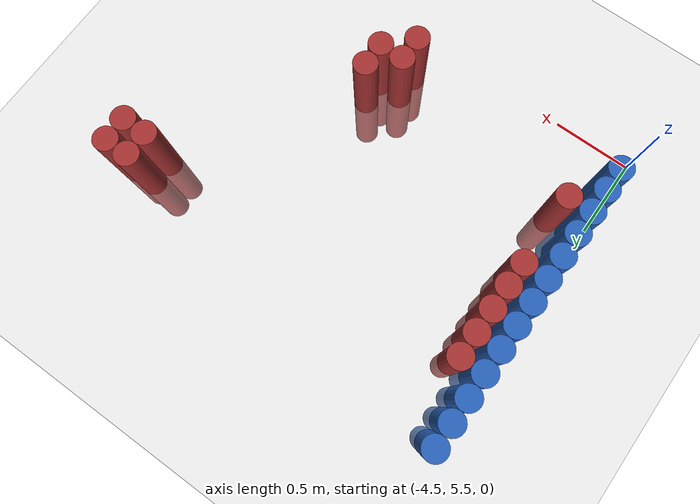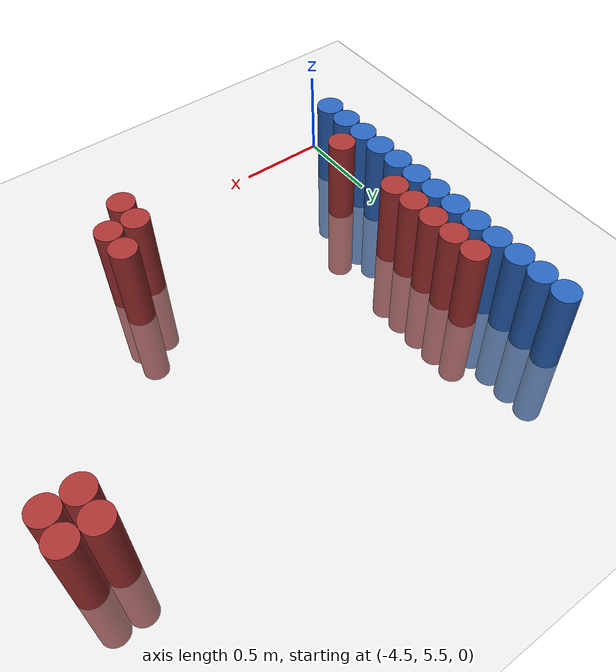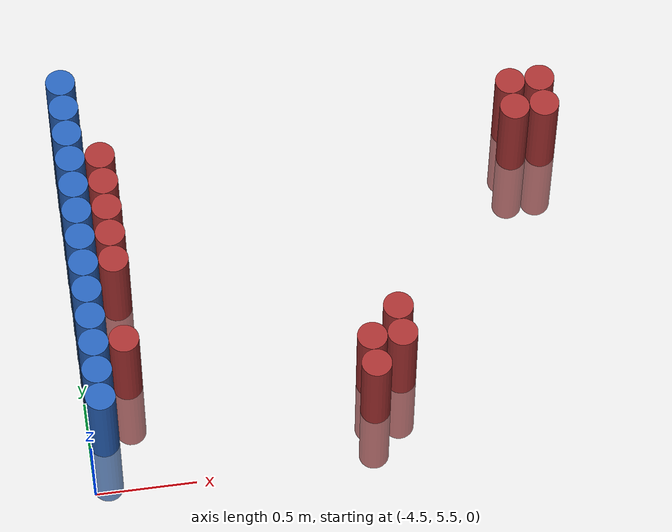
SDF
<sdf version="1.6">
 <world name="world_177">
  <model name="ground_plane">
   <static>1</static>
   <link name="link">
    <collision name="collision">
     <geometry><plane><normal>0 0 1</normal><size>100 100</size></plane></geometry>
     <surface><friction><ode><mu>100</mu><mu2>50</mu2></ode></friction></surface>
    </collision>
    <visual name="visual">
     <cast_shadows>0</cast_shadows>
     <geometry><plane><normal>0 0 1</normal><size>100 100</size></plane></geometry>
     <material>
      <script><uri>file://media/materials/scripts/gazebo.material</uri><name>Gazebo/Grey</name></script>
     </material>
    </visual>
   </link>
  </model>
  <model name="unit_cylinder_100">
   <static>1</static>
   <pose>-4.425000 5.775000 0.000000 0.000000 0.000000 0.000000</pose>
   <link name="link">
    <inertial>
     <mass>1</mass>
     <inertia><ixx>0.145833</ixx><ixy>0</ixy><ixz>0</ixz><iyy>0.145833</iyy><iyz>0</iyz><izz>0.125</izz></inertia>
    </inertial>
    <collision name="collision">
     <geometry><cylinder><radius>0.075000</radius><length>1</length></cylinder></geometry>
    </collision>
    <visual name="visual">
     <geometry><cylinder><radius>0.075000</radius><length>1</length></cylinder></geometry>
     <material>
      <ambient>0.152000 0.379000 0.720000 1</ambient>
      <diffuse>0.152000 0.379000 0.720000 1</diffuse>
     </material>
     <material>
      <script><name>Gazebo/Grey</name><uri>file://media/materials/scripts/gazebo.material</uri></script>
     </material>
    </visual>
   </link>
  </model>
  <model name="unit_cylinder_101">
   <static>1</static>
   <pose>-4.425000 5.925000 0.000000 0.000000 0.000000 0.000000</pose>
   <link name="link">
    <inertial>
     <mass>1</mass>
     <inertia><ixx>0.145833</ixx><ixy>0</ixy><ixz>0</ixz><iyy>0.145833</iyy><iyz>0</iyz><izz>0.125</izz></inertia>
    </inertial>
    <collision name="collision">
     <geometry><cylinder><radius>0.075000</radius><length>1</length></cylinder></geometry>
    </collision>
    <visual name="visual">
     <geometry><cylinder><radius>0.075000</radius><length>1</length></cylinder></geometry>
     <material>
      <ambient>0.152000 0.379000 0.720000 1</ambient>
      <diffuse>0.152000 0.379000 0.720000 1</diffuse>
     </material>
     <material>
      <script><name>Gazebo/Grey</name><uri>file://media/materials/scripts/gazebo.material</uri></script>
     </material>
    </visual>
   </link>
  </model>
  <model name="unit_cylinder_102">
   <static>1</static>
   <pose>-4.425000 6.075000 0.000000 0.000000 0.000000 0.000000</pose>
   <link name="link">
    <inertial>
     <mass>1</mass>
     <inertia><ixx>0.145833</ixx><ixy>0</ixy><ixz>0</ixz><iyy>0.145833</iyy><iyz>0</iyz><izz>0.125</izz></inertia>
    </inertial>
    <collision name="collision">
     <geometry><cylinder><radius>0.075000</radius><length>1</length></cylinder></geometry>
    </collision>
    <visual name="visual">
     <geometry><cylinder><radius>0.075000</radius><length>1</length></cylinder></geometry>
     <material>
      <ambient>0.152000 0.379000 0.720000 1</ambient>
      <diffuse>0.152000 0.379000 0.720000 1</diffuse>
     </material>
     <material>
      <script><name>Gazebo/Grey</name><uri>file://media/materials/scripts/gazebo.material</uri></script>
     </material>
    </visual>
   </link>
  </model>
  <model name="unit_cylinder_103">
   <static>1</static>
   <pose>-4.425000 6.225000 0.000000 0.000000 0.000000 0.000000</pose>
   <link name="link">
    <inertial>
     <mass>1</mass>
     <inertia><ixx>0.145833</ixx><ixy>0</ixy><ixz>0</ixz><iyy>0.145833</iyy><iyz>0</iyz><izz>0.125</izz></inertia>
    </inertial>
    <collision name="collision">
     <geometry><cylinder><radius>0.075000</radius><length>1</length></cylinder></geometry>
    </collision>
    <visual name="visual">
     <geometry><cylinder><radius>0.075000</radius><length>1</length></cylinder></geometry>
     <material>
      <ambient>0.152000 0.379000 0.720000 1</ambient>
      <diffuse>0.152000 0.379000 0.720000 1</diffuse>
     </material>
     <material>
      <script><name>Gazebo/Grey</name><uri>file://media/materials/scripts/gazebo.material</uri></script>
     </material>
    </visual>
   </link>
  </model>
  <model name="unit_cylinder_104">
   <static>1</static>
   <pose>-4.425000 6.375000 0.000000 0.000000 0.000000 0.000000</pose>
   <link name="link">
    <inertial>
     <mass>1</mass>
     <inertia><ixx>0.145833</ixx><ixy>0</ixy><ixz>0</ixz><iyy>0.145833</iyy><iyz>0</iyz><izz>0.125</izz></inertia>
    </inertial>
    <collision name="collision">
     <geometry><cylinder><radius>0.075000</radius><length>1</length></cylinder></geometry>
    </collision>
    <visual name="visual">
     <geometry><cylinder><radius>0.075000</radius><length>1</length></cylinder></geometry>
     <material>
      <ambient>0.152000 0.379000 0.720000 1</ambient>
      <diffuse>0.152000 0.379000 0.720000 1</diffuse>
     </material>
     <material>
      <script><name>Gazebo/Grey</name><uri>file://media/materials/scripts/gazebo.material</uri></script>
     </material>
    </visual>
   </link>
  </model>
  <model name="unit_cylinder_105">
   <static>1</static>
   <pose>-4.425000 6.525000 0.000000 0.000000 0.000000 0.000000</pose>
   <link name="link">
    <inertial>
     <mass>1</mass>
     <inertia><ixx>0.145833</ixx><ixy>0</ixy><ixz>0</ixz><iyy>0.145833</iyy><iyz>0</iyz><izz>0.125</izz></inertia>
    </inertial>
    <collision name="collision">
     <geometry><cylinder><radius>0.075000</radius><length>1</length></cylinder></geometry>
    </collision>
    <visual name="visual">
     <geometry><cylinder><radius>0.075000</radius><length>1</length></cylinder></geometry>
     <material>
      <ambient>0.152000 0.379000 0.720000 1</ambient>
      <diffuse>0.152000 0.379000 0.720000 1</diffuse>
     </material>
     <material>
      <script><name>Gazebo/Grey</name><uri>file://media/materials/scripts/gazebo.material</uri></script>
     </material>
    </visual>
   </link>
  </model>
  <model name="unit_cylinder_106">
   <static>1</static>
   <pose>-4.425000 6.675000 0.000000 0.000000 0.000000 0.000000</pose>
   <link name="link">
    <inertial>
     <mass>1</mass>
     <inertia><ixx>0.145833</ixx><ixy>0</ixy><ixz>0</ixz><iyy>0.145833</iyy><iyz>0</iyz><izz>0.125</izz></inertia>
    </inertial>
    <collision name="collision">
     <geometry><cylinder><radius>0.075000</radius><length>1</length></cylinder></geometry>
    </collision>
    <visual name="visual">
     <geometry><cylinder><radius>0.075000</radius><length>1</length></cylinder></geometry>
     <material>
      <ambient>0.152000 0.379000 0.720000 1</ambient>
      <diffuse>0.152000 0.379000 0.720000 1</diffuse>
     </material>
     <material>
      <script><name>Gazebo/Grey</name><uri>file://media/materials/scripts/gazebo.material</uri></script>
     </material>
    </visual>
   </link>
  </model>
  <model name="unit_cylinder_107">
   <static>1</static>
   <pose>-4.425000 6.825000 0.000000 0.000000 0.000000 0.000000</pose>
   <link name="link">
    <inertial>
     <mass>1</mass>
     <inertia><ixx>0.145833</ixx><ixy>0</ixy><ixz>0</ixz><iyy>0.145833</iyy><iyz>0</iyz><izz>0.125</izz></inertia>
    </inertial>
    <collision name="collision">
     <geometry><cylinder><radius>0.075000</radius><length>1</length></cylinder></geometry>
    </collision>
    <visual name="visual">
     <geometry><cylinder><radius>0.075000</radius><length>1</length></cylinder></geometry>
     <material>
      <ambient>0.152000 0.379000 0.720000 1</ambient>
      <diffuse>0.152000 0.379000 0.720000 1</diffuse>
     </material>
     <material>
      <script><name>Gazebo/Grey</name><uri>file://media/materials/scripts/gazebo.material</uri></script>
     </material>
    </visual>
   </link>
  </model>
  <model name="unit_cylinder_108">
   <static>1</static>
   <pose>-4.425000 6.975000 0.000000 0.000000 0.000000 0.000000</pose>
   <link name="link">
    <inertial>
     <mass>1</mass>
     <inertia><ixx>0.145833</ixx><ixy>0</ixy><ixz>0</ixz><iyy>0.145833</iyy><iyz>0</iyz><izz>0.125</izz></inertia>
    </inertial>
    <collision name="collision">
     <geometry><cylinder><radius>0.075000</radius><length>1</length></cylinder></geometry>
    </collision>
    <visual name="visual">
     <geometry><cylinder><radius>0.075000</radius><length>1</length></cylinder></geometry>
     <material>
      <ambient>0.152000 0.379000 0.720000 1</ambient>
      <diffuse>0.152000 0.379000 0.720000 1</diffuse>
     </material>
     <material>
      <script><name>Gazebo/Grey</name><uri>file://media/materials/scripts/gazebo.material</uri></script>
     </material>
    </visual>
   </link>
  </model>
  <model name="unit_cylinder_109">
   <static>1</static>
   <pose>-4.425000 7.125000 0.000000 0.000000 0.000000 0.000000</pose>
   <link name="link">
    <inertial>
     <mass>1</mass>
     <inertia><ixx>0.145833</ixx><ixy>0</ixy><ixz>0</ixz><iyy>0.145833</iyy><iyz>0</iyz><izz>0.125</izz></inertia>
    </inertial>
    <collision name="collision">
     <geometry><cylinder><radius>0.075000</radius><length>1</length></cylinder></geometry>
    </collision>
    <visual name="visual">
     <geometry><cylinder><radius>0.075000</radius><length>1</length></cylinder></geometry>
     <material>
      <ambient>0.152000 0.379000 0.720000 1</ambient>
      <diffuse>0.152000 0.379000 0.720000 1</diffuse>
     </material>
     <material>
      <script><name>Gazebo/Grey</name><uri>file://media/materials/scripts/gazebo.material</uri></script>
     </material>
    </visual>
   </link>
  </model>
  <model name="unit_cylinder_110">
   <static>1</static>
   <pose>-4.425000 7.275000 0.000000 0.000000 0.000000 0.000000</pose>
   <link name="link">
    <inertial>
     <mass>1</mass>
     <inertia><ixx>0.145833</ixx><ixy>0</ixy><ixz>0</ixz><iyy>0.145833</iyy><iyz>0</iyz><izz>0.125</izz></inertia>
    </inertial>
    <collision name="collision">
     <geometry><cylinder><radius>0.075000</radius><length>1</length></cylinder></geometry>
    </collision>
    <visual name="visual">
     <geometry><cylinder><radius>0.075000</radius><length>1</length></cylinder></geometry>
     <material>
      <ambient>0.152000 0.379000 0.720000 1</ambient>
      <diffuse>0.152000 0.379000 0.720000 1</diffuse>
     </material>
     <material>
      <script><name>Gazebo/Grey</name><uri>file://media/materials/scripts/gazebo.material</uri></script>
     </material>
    </visual>
   </link>
  </model>
  <model name="unit_cylinder_111">
   <static>1</static>
   <pose>-4.425000 7.425000 0.000000 0.000000 0.000000 0.000000</pose>
   <link name="link">
    <inertial>
     <mass>1</mass>
     <inertia><ixx>0.145833</ixx><ixy>0</ixy><ixz>0</ixz><iyy>0.145833</iyy><iyz>0</iyz><izz>0.125</izz></inertia>
    </inertial>
    <collision name="collision">
     <geometry><cylinder><radius>0.075000</radius><length>1</length></cylinder></geometry>
    </collision>
    <visual name="visual">
     <geometry><cylinder><radius>0.075000</radius><length>1</length></cylinder></geometry>
     <material>
      <ambient>0.152000 0.379000 0.720000 1</ambient>
      <diffuse>0.152000 0.379000 0.720000 1</diffuse>
     </material>
     <material>
      <script><name>Gazebo/Grey</name><uri>file://media/materials/scripts/gazebo.material</uri></script>
     </material>
    </visual>
   </link>
  </model>
  <model name="unit_cylinder_112">
   <static>1</static>
   <pose>-4.425000 7.575000 0.000000 0.000000 0.000000 0.000000</pose>
   <link name="link">
    <inertial>
     <mass>1</mass>
     <inertia><ixx>0.145833</ixx><ixy>0</ixy><ixz>0</ixz><iyy>0.145833</iyy><iyz>0</iyz><izz>0.125</izz></inertia>
    </inertial>
    <collision name="collision">
     <geometry><cylinder><radius>0.075000</radius><length>1</length></cylinder></geometry>
    </collision>
    <visual name="visual">
     <geometry><cylinder><radius>0.075000</radius><length>1</length></cylinder></geometry>
     <material>
      <ambient>0.152000 0.379000 0.720000 1</ambient>
      <diffuse>0.152000 0.379000 0.720000 1</diffuse>
     </material>
     <material>
      <script><name>Gazebo/Grey</name><uri>file://media/materials/scripts/gazebo.material</uri></script>
     </material>
    </visual>
   </link>
  </model>
  <model name="unit_cylinder_127">
   <static>1</static>
   <pose>-4.275000 6.075000 0.000000 0.000000 0.000000 0.000000</pose>
   <link name="link">
    <inertial>
     <mass>1</mass>
     <inertia><ixx>0.145833</ixx><ixy>0</ixy><ixz>0</ixz><iyy>0.145833</iyy><iyz>0</iyz><izz>0.125</izz></inertia>
    </inertial>
    <collision name="collision">
     <geometry><cylinder><radius>0.075000</radius><length>1</length></cylinder></geometry>
    </collision>
    <visual name="visual">
     <geometry><cylinder><radius>0.075000</radius><length>1</length></cylinder></geometry>
     <material>
      <ambient>0.648000 0.192000 0.192000 1</ambient>
      <diffuse>0.648000 0.192000 0.192000 1</diffuse>
     </material>
     <material>
      <script><name>Gazebo/Grey</name><uri>file://media/materials/scripts/gazebo.material</uri></script>
     </material>
    </visual>
   </link>
  </model>
  <model name="unit_cylinder_128">
   <static>1</static>
   <pose>-4.275000 6.525000 0.000000 0.000000 0.000000 0.000000</pose>
   <link name="link">
    <inertial>
     <mass>1</mass>
     <inertia><ixx>0.145833</ixx><ixy>0</ixy><ixz>0</ixz><iyy>0.145833</iyy><iyz>0</iyz><izz>0.125</izz></inertia>
    </inertial>
    <collision name="collision">
     <geometry><cylinder><radius>0.075000</radius><length>1</length></cylinder></geometry>
    </collision>
    <visual name="visual">
     <geometry><cylinder><radius>0.075000</radius><length>1</length></cylinder></geometry>
     <material>
      <ambient>0.648000 0.192000 0.192000 1</ambient>
      <diffuse>0.648000 0.192000 0.192000 1</diffuse>
     </material>
     <material>
      <script><name>Gazebo/Grey</name><uri>file://media/materials/scripts/gazebo.material</uri></script>
     </material>
    </visual>
   </link>
  </model>
  <model name="unit_cylinder_129">
   <static>1</static>
   <pose>-4.275000 6.675000 0.000000 0.000000 0.000000 0.000000</pose>
   <link name="link">
    <inertial>
     <mass>1</mass>
     <inertia><ixx>0.145833</ixx><ixy>0</ixy><ixz>0</ixz><iyy>0.145833</iyy><iyz>0</iyz><izz>0.125</izz></inertia>
    </inertial>
    <collision name="collision">
     <geometry><cylinder><radius>0.075000</radius><length>1</length></cylinder></geometry>
    </collision>
    <visual name="visual">
     <geometry><cylinder><radius>0.075000</radius><length>1</length></cylinder></geometry>
     <material>
      <ambient>0.648000 0.192000 0.192000 1</ambient>
      <diffuse>0.648000 0.192000 0.192000 1</diffuse>
     </material>
     <material>
      <script><name>Gazebo/Grey</name><uri>file://media/materials/scripts/gazebo.material</uri></script>
     </material>
    </visual>
   </link>
  </model>
  <model name="unit_cylinder_130">
   <static>1</static>
   <pose>-4.275000 6.825000 0.000000 0.000000 0.000000 0.000000</pose>
   <link name="link">
    <inertial>
     <mass>1</mass>
     <inertia><ixx>0.145833</ixx><ixy>0</ixy><ixz>0</ixz><iyy>0.145833</iyy><iyz>0</iyz><izz>0.125</izz></inertia>
    </inertial>
    <collision name="collision">
     <geometry><cylinder><radius>0.075000</radius><length>1</length></cylinder></geometry>
    </collision>
    <visual name="visual">
     <geometry><cylinder><radius>0.075000</radius><length>1</length></cylinder></geometry>
     <material>
      <ambient>0.648000 0.192000 0.192000 1</ambient>
      <diffuse>0.648000 0.192000 0.192000 1</diffuse>
     </material>
     <material>
      <script><name>Gazebo/Grey</name><uri>file://media/materials/scripts/gazebo.material</uri></script>
     </material>
    </visual>
   </link>
  </model>
  <model name="unit_cylinder_131">
   <static>1</static>
   <pose>-4.275000 6.975000 0.000000 0.000000 0.000000 0.000000</pose>
   <link name="link">
    <inertial>
     <mass>1</mass>
     <inertia><ixx>0.145833</ixx><ixy>0</ixy><ixz>0</ixz><iyy>0.145833</iyy><iyz>0</iyz><izz>0.125</izz></inertia>
    </inertial>
    <collision name="collision">
     <geometry><cylinder><radius>0.075000</radius><length>1</length></cylinder></geometry>
    </collision>
    <visual name="visual">
     <geometry><cylinder><radius>0.075000</radius><length>1</length></cylinder></geometry>
     <material>
      <ambient>0.648000 0.192000 0.192000 1</ambient>
      <diffuse>0.648000 0.192000 0.192000 1</diffuse>
     </material>
     <material>
      <script><name>Gazebo/Grey</name><uri>file://media/materials/scripts/gazebo.material</uri></script>
     </material>
    </visual>
   </link>
  </model>
  <model name="unit_cylinder_132">
   <static>1</static>
   <pose>-4.275000 7.125000 0.000000 0.000000 0.000000 0.000000</pose>
   <link name="link">
    <inertial>
     <mass>1</mass>
     <inertia><ixx>0.145833</ixx><ixy>0</ixy><ixz>0</ixz><iyy>0.145833</iyy><iyz>0</iyz><izz>0.125</izz></inertia>
    </inertial>
    <collision name="collision">
     <geometry><cylinder><radius>0.075000</radius><length>1</length></cylinder></geometry>
    </collision>
    <visual name="visual">
     <geometry><cylinder><radius>0.075000</radius><length>1</length></cylinder></geometry>
     <material>
      <ambient>0.648000 0.192000 0.192000 1</ambient>
      <diffuse>0.648000 0.192000 0.192000 1</diffuse>
     </material>
     <material>
      <script><name>Gazebo/Grey</name><uri>file://media/materials/scripts/gazebo.material</uri></script>
     </material>
    </visual>
   </link>
  </model>
  <model name="unit_cylinder_141">
   <static>1</static>
   <pose>-3.075000 5.775000 0.000000 0.000000 0.000000 0.000000</pose>
   <link name="link">
    <inertial>
     <mass>1</mass>
     <inertia><ixx>0.145833</ixx><ixy>0</ixy><ixz>0</ixz><iyy>0.145833</iyy><iyz>0</iyz><izz>0.125</izz></inertia>
    </inertial>
    <collision name="collision">
     <geometry><cylinder><radius>0.075000</radius><length>1</length></cylinder></geometry>
    </collision>
    <visual name="visual">
     <geometry><cylinder><radius>0.075000</radius><length>1</length></cylinder></geometry>
     <material>
      <ambient>0.648000 0.192000 0.192000 1</ambient>
      <diffuse>0.648000 0.192000 0.192000 1</diffuse>
     </material>
     <material>
      <script><name>Gazebo/Grey</name><uri>file://media/materials/scripts/gazebo.material</uri></script>
     </material>
    </visual>
   </link>
  </model>
  <model name="unit_cylinder_142">
   <static>1</static>
   <pose>-3.075000 5.925000 0.000000 0.000000 0.000000 0.000000</pose>
   <link name="link">
    <inertial>
     <mass>1</mass>
     <inertia><ixx>0.145833</ixx><ixy>0</ixy><ixz>0</ixz><iyy>0.145833</iyy><iyz>0</iyz><izz>0.125</izz></inertia>
    </inertial>
    <collision name="collision">
     <geometry><cylinder><radius>0.075000</radius><length>1</length></cylinder></geometry>
    </collision>
    <visual name="visual">
     <geometry><cylinder><radius>0.075000</radius><length>1</length></cylinder></geometry>
     <material>
      <ambient>0.648000 0.192000 0.192000 1</ambient>
      <diffuse>0.648000 0.192000 0.192000 1</diffuse>
     </material>
     <material>
      <script><name>Gazebo/Grey</name><uri>file://media/materials/scripts/gazebo.material</uri></script>
     </material>
    </visual>
   </link>
  </model>
  <model name="unit_cylinder_143">
   <static>1</static>
   <pose>-2.925000 5.925000 0.000000 0.000000 0.000000 0.000000</pose>
   <link name="link">
    <inertial>
     <mass>1</mass>
     <inertia><ixx>0.145833</ixx><ixy>0</ixy><ixz>0</ixz><iyy>0.145833</iyy><iyz>0</iyz><izz>0.125</izz></inertia>
    </inertial>
    <collision name="collision">
     <geometry><cylinder><radius>0.075000</radius><length>1</length></cylinder></geometry>
    </collision>
    <visual name="visual">
     <geometry><cylinder><radius>0.075000</radius><length>1</length></cylinder></geometry>
     <material>
      <ambient>0.648000 0.192000 0.192000 1</ambient>
      <diffuse>0.648000 0.192000 0.192000 1</diffuse>
     </material>
     <material>
      <script><name>Gazebo/Grey</name><uri>file://media/materials/scripts/gazebo.material</uri></script>
     </material>
    </visual>
   </link>
  </model>
  <model name="unit_cylinder_144">
   <static>1</static>
   <pose>-2.925000 6.075000 0.000000 0.000000 0.000000 0.000000</pose>
   <link name="link">
    <inertial>
     <mass>1</mass>
     <inertia><ixx>0.145833</ixx><ixy>0</ixy><ixz>0</ixz><iyy>0.145833</iyy><iyz>0</iyz><izz>0.125</izz></inertia>
    </inertial>
    <collision name="collision">
     <geometry><cylinder><radius>0.075000</radius><length>1</length></cylinder></geometry>
    </collision>
    <visual name="visual">
     <geometry><cylinder><radius>0.075000</radius><length>1</length></cylinder></geometry>
     <material>
      <ambient>0.648000 0.192000 0.192000 1</ambient>
      <diffuse>0.648000 0.192000 0.192000 1</diffuse>
     </material>
     <material>
      <script><name>Gazebo/Grey</name><uri>file://media/materials/scripts/gazebo.material</uri></script>
     </material>
    </visual>
   </link>
  </model>
  <model name="unit_cylinder_152">
   <static>1</static>
   <pose>-2.175000 7.125000 0.000000 0.000000 0.000000 0.000000</pose>
   <link name="link">
    <inertial>
     <mass>1</mass>
     <inertia><ixx>0.145833</ixx><ixy>0</ixy><ixz>0</ixz><iyy>0.145833</iyy><iyz>0</iyz><izz>0.125</izz></inertia>
    </inertial>
    <collision name="collision">
     <geometry><cylinder><radius>0.075000</radius><length>1</length></cylinder></geometry>
    </collision>
    <visual name="visual">
     <geometry><cylinder><radius>0.075000</radius><length>1</length></cylinder></geometry>
     <material>
      <ambient>0.648000 0.192000 0.192000 1</ambient>
      <diffuse>0.648000 0.192000 0.192000 1</diffuse>
     </material>
     <material>
      <script><name>Gazebo/Grey</name><uri>file://media/materials/scripts/gazebo.material</uri></script>
     </material>
    </visual>
   </link>
  </model>
  <model name="unit_cylinder_153">
   <static>1</static>
   <pose>-2.175000 7.275000 0.000000 0.000000 0.000000 0.000000</pose>
   <link name="link">
    <inertial>
     <mass>1</mass>
     <inertia><ixx>0.145833</ixx><ixy>0</ixy><ixz>0</ixz><iyy>0.145833</iyy><iyz>0</iyz><izz>0.125</izz></inertia>
    </inertial>
    <collision name="collision">
     <geometry><cylinder><radius>0.075000</radius><length>1</length></cylinder></geometry>
    </collision>
    <visual name="visual">
     <geometry><cylinder><radius>0.075000</radius><length>1</length></cylinder></geometry>
     <material>
      <ambient>0.648000 0.192000 0.192000 1</ambient>
      <diffuse>0.648000 0.192000 0.192000 1</diffuse>
     </material>
     <material>
      <script><name>Gazebo/Grey</name><uri>file://media/materials/scripts/gazebo.material</uri></script>
     </material>
    </visual>
   </link>
  </model>
  <model name="unit_cylinder_156">
   <static>1</static>
   <pose>-2.025000 7.125000 0.000000 0.000000 0.000000 0.000000</pose>
   <link name="link">
    <inertial>
     <mass>1</mass>
     <inertia><ixx>0.145833</ixx><ixy>0</ixy><ixz>0</ixz><iyy>0.145833</iyy><iyz>0</iyz><izz>0.125</izz></inertia>
    </inertial>
    <collision name="collision">
     <geometry><cylinder><radius>0.075000</radius><length>1</length></cylinder></geometry>
    </collision>
    <visual name="visual">
     <geometry><cylinder><radius>0.075000</radius><length>1</length></cylinder></geometry>
     <material>
      <ambient>0.648000 0.192000 0.192000 1</ambient>
      <diffuse>0.648000 0.192000 0.192000 1</diffuse>
     </material>
     <material>
      <script><name>Gazebo/Grey</name><uri>file://media/materials/scripts/gazebo.material</uri></script>
     </material>
    </visual>
   </link>
  </model>
  <model name="unit_cylinder_157">
   <static>1</static>
   <pose>-2.025000 7.275000 0.000000 0.000000 0.000000 0.000000</pose>
   <link name="link">
    <inertial>
     <mass>1</mass>
     <inertia><ixx>0.145833</ixx><ixy>0</ixy><ixz>0</ixz><iyy>0.145833</iyy><iyz>0</iyz><izz>0.125</izz></inertia>
    </inertial>
    <collision name="collision">
     <geometry><cylinder><radius>0.075000</radius><length>1</length></cylinder></geometry>
    </collision>
    <visual name="visual">
     <geometry><cylinder><radius>0.075000</radius><length>1</length></cylinder></geometry>
     <material>
      <ambient>0.648000 0.192000 0.192000 1</ambient>
      <diffuse>0.648000 0.192000 0.192000 1</diffuse>
     </material>
     <material>
      <script><name>Gazebo/Grey</name><uri>file://media/materials/scripts/gazebo.material</uri></script>
     </material>
    </visual>
   </link>
  </model>
 </world>
</sdf>
